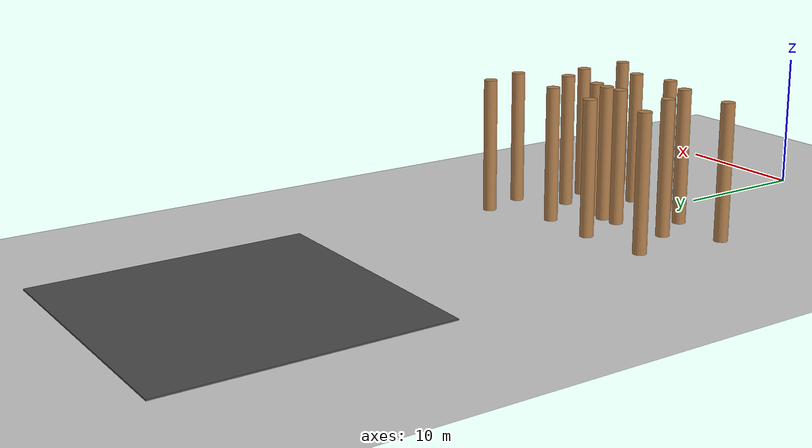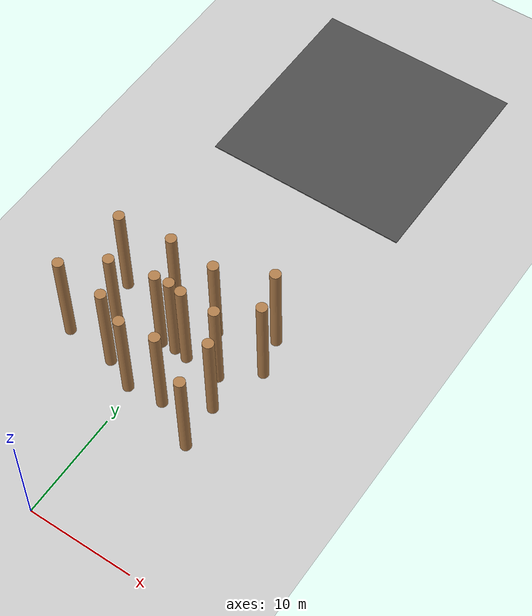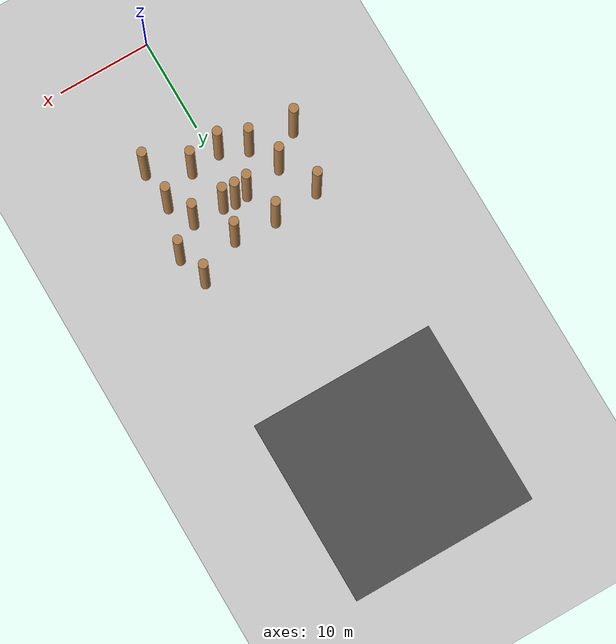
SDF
<sdf version="1.6">
 <world name="default">
  <model name="ground_plane">
   <static>1</static>
   <link name="link">
    <collision name="collision">
     <geometry><plane><normal>0 0 1</normal><size>100 100</size></plane></geometry>
     <surface><friction><ode><mu>100</mu><mu2>50</mu2></ode></friction></surface>
    </collision>
    <visual name="visual">
     <cast_shadows>0</cast_shadows>
     <geometry><plane><normal>0 0 1</normal><size>100 100</size></plane></geometry>
     <material>
      <script><uri>file://media/materials/scripts/gazebo.material</uri><name>Gazebo/Grey</name></script>
     </material>
    </visual>
   </link>
  </model>
  <model name="train_1">
   <link name="link_0_clone_0_clone_11_clone_3">
    <pose>9.37408 6.83632 0.043478 0 -0 3e-06</pose>
    <inertial>
     <mass>1000</mass>
     <inertia><ixx>0.145833</ixx><ixy>0</ixy><ixz>0</ixz><iyy>0.145833</iyy><iyz>0</iyz><izz>0.125</izz></inertia>
    </inertial>
    <visual name="visual">
     <pose>0 0 4.5 0 -0 0</pose>
     <geometry><cylinder><radius>0.5</radius><length>10</length></cylinder></geometry>
     <material>
      <lighting>1</lighting>
      <script><uri>file://media/materials/scripts/gazebo.material</uri><name>Gazebo/WoodFloor</name></script>
      <ambient>0.3 0.3 0.3 1</ambient>
      <diffuse>0.7 0.7 0.7 1</diffuse>
      <specular>0.01 0.01 0.01 1</specular>
      <emissive>0 0 0 1</emissive>
      <shader type="vertex"><normal_map>__default__</normal_map></shader>
     </material>
    </visual>
    <collision name="collision">
     <pose>0 0 4.5 0 -0 0</pose>
     <geometry><cylinder><radius>0.5</radius><length>10</length></cylinder></geometry>
     <surface>
      <friction>
       <ode><mu>1</mu><mu2>1</mu2><fdir1>0 0 0</fdir1><slip1>0</slip1><slip2>0</slip2></ode>
       <torsional>
        <coefficient>1</coefficient>
        <patch_radius>0</patch_radius>
        <surface_radius>0</surface_radius>
        <use_patch_radius>1</use_patch_radius>
        <ode><slip>0</slip></ode>
       </torsional>
      </friction>
      <bounce><restitution_coefficient>0</restitution_coefficient><threshold>1e+06</threshold></bounce>
      <contact>
       <collide_without_contact>0</collide_without_contact>
       <collide_without_contact_bitmask>1</collide_without_contact_bitmask>
       <collide_bitmask>1</collide_bitmask>
       <ode>
        <soft_cfm>0</soft_cfm>
        <soft_erp>0.2</soft_erp>
        <kp>1e+13</kp>
        <kd>1</kd>
        <max_vel>0.01</max_vel>
        <min_depth>0</min_depth>
       </ode>
       <bullet>
        <split_impulse>1</split_impulse>
        <split_impulse_penetration_threshold>-0.01</split_impulse_penetration_threshold>
        <soft_cfm>0</soft_cfm>
        <soft_erp>0.2</soft_erp>
        <kp>1e+13</kp>
        <kd>1</kd>
       </bullet>
      </contact>
     </surface>
    </collision>
   </link>
   <link name="link_0_clone_0_clone_11_clone_8">
    <pose>-6.90192 1.15105 0.043478 0 -0 3e-06</pose>
    <inertial>
     <mass>1000</mass>
     <inertia><ixx>0.145833</ixx><ixy>0</ixy><ixz>0</ixz><iyy>0.145833</iyy><iyz>0</iyz><izz>0.125</izz></inertia>
    </inertial>
    <visual name="visual">
     <pose>0 0 4.5 0 -0 0</pose>
     <geometry><cylinder><radius>0.5</radius><length>10</length></cylinder></geometry>
     <material>
      <lighting>1</lighting>
      <script><uri>file://media/materials/scripts/gazebo.material</uri><name>Gazebo/WoodFloor</name></script>
      <ambient>0.3 0.3 0.3 1</ambient>
      <diffuse>0.7 0.7 0.7 1</diffuse>
      <specular>0.01 0.01 0.01 1</specular>
      <emissive>0 0 0 1</emissive>
      <shader type="vertex"><normal_map>__default__</normal_map></shader>
     </material>
    </visual>
    <collision name="collision">
     <pose>0 0 4.5 0 -0 0</pose>
     <geometry><cylinder><radius>0.5</radius><length>10</length></cylinder></geometry>
     <surface>
      <friction>
       <ode><mu>1</mu><mu2>1</mu2><fdir1>0 0 0</fdir1><slip1>0</slip1><slip2>0</slip2></ode>
       <torsional>
        <coefficient>1</coefficient>
        <patch_radius>0</patch_radius>
        <surface_radius>0</surface_radius>
        <use_patch_radius>1</use_patch_radius>
        <ode><slip>0</slip></ode>
       </torsional>
      </friction>
      <bounce><restitution_coefficient>0</restitution_coefficient><threshold>1e+06</threshold></bounce>
      <contact>
       <collide_without_contact>0</collide_without_contact>
       <collide_without_contact_bitmask>1</collide_without_contact_bitmask>
       <collide_bitmask>1</collide_bitmask>
       <ode>
        <soft_cfm>0</soft_cfm>
        <soft_erp>0.2</soft_erp>
        <kp>1e+13</kp>
        <kd>1</kd>
        <max_vel>0.01</max_vel>
        <min_depth>0</min_depth>
       </ode>
       <bullet>
        <split_impulse>1</split_impulse>
        <split_impulse_penetration_threshold>-0.01</split_impulse_penetration_threshold>
        <soft_cfm>0</soft_cfm>
        <soft_erp>0.2</soft_erp>
        <kp>1e+13</kp>
        <kd>1</kd>
       </bullet>
      </contact>
     </surface>
    </collision>
   </link>
   <link name="link_0_clone_0_clone_15">
    <pose>3.75773 7.96734 0.043478 0 -0 0</pose>
    <inertial>
     <mass>1000</mass>
     <inertia><ixx>0.145833</ixx><ixy>0</ixy><ixz>0</ixz><iyy>0.145833</iyy><iyz>0</iyz><izz>0.125</izz></inertia>
    </inertial>
    <visual name="visual">
     <pose>0 0 4.5 0 -0 0</pose>
     <geometry><cylinder><radius>0.5</radius><length>10</length></cylinder></geometry>
     <material>
      <lighting>1</lighting>
      <script><uri>file://media/materials/scripts/gazebo.material</uri><name>Gazebo/WoodFloor</name></script>
      <ambient>0.3 0.3 0.3 1</ambient>
      <diffuse>0.7 0.7 0.7 1</diffuse>
      <specular>0.01 0.01 0.01 1</specular>
      <emissive>0 0 0 1</emissive>
      <shader type="vertex"><normal_map>__default__</normal_map></shader>
     </material>
    </visual>
    <collision name="collision">
     <pose>0 0 4.5 0 -0 0</pose>
     <geometry><cylinder><radius>0.5</radius><length>10</length></cylinder></geometry>
     <surface>
      <friction>
       <ode><mu>1</mu><mu2>1</mu2><fdir1>0 0 0</fdir1><slip1>0</slip1><slip2>0</slip2></ode>
       <torsional>
        <coefficient>1</coefficient>
        <patch_radius>0</patch_radius>
        <surface_radius>0</surface_radius>
        <use_patch_radius>1</use_patch_radius>
        <ode><slip>0</slip></ode>
       </torsional>
      </friction>
      <bounce><restitution_coefficient>0</restitution_coefficient><threshold>1e+06</threshold></bounce>
      <contact>
       <collide_without_contact>0</collide_without_contact>
       <collide_without_contact_bitmask>1</collide_without_contact_bitmask>
       <collide_bitmask>1</collide_bitmask>
       <ode>
        <soft_cfm>0</soft_cfm>
        <soft_erp>0.2</soft_erp>
        <kp>1e+13</kp>
        <kd>1</kd>
        <max_vel>0.01</max_vel>
        <min_depth>0</min_depth>
       </ode>
       <bullet>
        <split_impulse>1</split_impulse>
        <split_impulse_penetration_threshold>-0.01</split_impulse_penetration_threshold>
        <soft_cfm>0</soft_cfm>
        <soft_erp>0.2</soft_erp>
        <kp>1e+13</kp>
        <kd>1</kd>
       </bullet>
      </contact>
     </surface>
    </collision>
   </link>
   <link name="link_0_clone_0_clone_5">
    <pose>0.389912 4.52116 0.043478 0 -0 0</pose>
    <inertial>
     <mass>1000</mass>
     <inertia><ixx>0.145833</ixx><ixy>0</ixy><ixz>0</ixz><iyy>0.145833</iyy><iyz>0</iyz><izz>0.125</izz></inertia>
    </inertial>
    <visual name="visual">
     <pose>0 0 4.5 0 -0 0</pose>
     <geometry><cylinder><radius>0.5</radius><length>10</length></cylinder></geometry>
     <material>
      <lighting>1</lighting>
      <script><uri>file://media/materials/scripts/gazebo.material</uri><name>Gazebo/WoodFloor</name></script>
      <ambient>0.3 0.3 0.3 1</ambient>
      <diffuse>0.7 0.7 0.7 1</diffuse>
      <specular>0.01 0.01 0.01 1</specular>
      <emissive>0 0 0 1</emissive>
      <shader type="vertex"><normal_map>__default__</normal_map></shader>
     </material>
    </visual>
    <collision name="collision">
     <pose>0 0 4.5 0 -0 0</pose>
     <geometry><cylinder><radius>0.5</radius><length>10</length></cylinder></geometry>
     <surface>
      <friction>
       <ode><mu>1</mu><mu2>1</mu2><fdir1>0 0 0</fdir1><slip1>0</slip1><slip2>0</slip2></ode>
       <torsional>
        <coefficient>1</coefficient>
        <patch_radius>0</patch_radius>
        <surface_radius>0</surface_radius>
        <use_patch_radius>1</use_patch_radius>
        <ode><slip>0</slip></ode>
       </torsional>
      </friction>
      <bounce><restitution_coefficient>0</restitution_coefficient><threshold>1e+06</threshold></bounce>
      <contact>
       <collide_without_contact>0</collide_without_contact>
       <collide_without_contact_bitmask>1</collide_without_contact_bitmask>
       <collide_bitmask>1</collide_bitmask>
       <ode>
        <soft_cfm>0</soft_cfm>
        <soft_erp>0.2</soft_erp>
        <kp>1e+13</kp>
        <kd>1</kd>
        <max_vel>0.01</max_vel>
        <min_depth>0</min_depth>
       </ode>
       <bullet>
        <split_impulse>1</split_impulse>
        <split_impulse_penetration_threshold>-0.01</split_impulse_penetration_threshold>
        <soft_cfm>0</soft_cfm>
        <soft_erp>0.2</soft_erp>
        <kp>1e+13</kp>
        <kd>1</kd>
       </bullet>
      </contact>
     </surface>
    </collision>
   </link>
   <link name="link_0_clone_0_clone_5_clone_10">
    <pose>7.82332 1.64839 0.043478 0 -0 3e-06</pose>
    <inertial>
     <mass>1000</mass>
     <inertia><ixx>0.145833</ixx><ixy>0</ixy><ixz>0</ixz><iyy>0.145833</iyy><iyz>0</iyz><izz>0.125</izz></inertia>
    </inertial>
    <visual name="visual">
     <pose>0 0 4.5 0 -0 0</pose>
     <geometry><cylinder><radius>0.5</radius><length>10</length></cylinder></geometry>
     <material>
      <lighting>1</lighting>
      <script><uri>file://media/materials/scripts/gazebo.material</uri><name>Gazebo/WoodFloor</name></script>
      <ambient>0.3 0.3 0.3 1</ambient>
      <diffuse>0.7 0.7 0.7 1</diffuse>
      <specular>0.01 0.01 0.01 1</specular>
      <emissive>0 0 0 1</emissive>
      <shader type="vertex"><normal_map>__default__</normal_map></shader>
     </material>
    </visual>
    <collision name="collision">
     <pose>0 0 4.5 0 -0 0</pose>
     <geometry><cylinder><radius>0.5</radius><length>10</length></cylinder></geometry>
     <surface>
      <friction>
       <ode><mu>1</mu><mu2>1</mu2><fdir1>0 0 0</fdir1><slip1>0</slip1><slip2>0</slip2></ode>
       <torsional>
        <coefficient>1</coefficient>
        <patch_radius>0</patch_radius>
        <surface_radius>0</surface_radius>
        <use_patch_radius>1</use_patch_radius>
        <ode><slip>0</slip></ode>
       </torsional>
      </friction>
      <bounce><restitution_coefficient>0</restitution_coefficient><threshold>1e+06</threshold></bounce>
      <contact>
       <collide_without_contact>0</collide_without_contact>
       <collide_without_contact_bitmask>1</collide_without_contact_bitmask>
       <collide_bitmask>1</collide_bitmask>
       <ode>
        <soft_cfm>0</soft_cfm>
        <soft_erp>0.2</soft_erp>
        <kp>1e+13</kp>
        <kd>1</kd>
        <max_vel>0.01</max_vel>
        <min_depth>0</min_depth>
       </ode>
       <bullet>
        <split_impulse>1</split_impulse>
        <split_impulse_penetration_threshold>-0.01</split_impulse_penetration_threshold>
        <soft_cfm>0</soft_cfm>
        <soft_erp>0.2</soft_erp>
        <kp>1e+13</kp>
        <kd>1</kd>
       </bullet>
      </contact>
     </surface>
    </collision>
   </link>
   <link name="link_0_clone_0_clone_5_clone_11">
    <pose>1.77367 4.61405 0.043478 0 -0 3e-06</pose>
    <inertial>
     <mass>1000</mass>
     <inertia><ixx>0.145833</ixx><ixy>0</ixy><ixz>0</ixz><iyy>0.145833</iyy><iyz>0</iyz><izz>0.125</izz></inertia>
    </inertial>
    <visual name="visual">
     <pose>0 0 4.5 0 -0 0</pose>
     <geometry><cylinder><radius>0.5</radius><length>10</length></cylinder></geometry>
     <material>
      <lighting>1</lighting>
      <script><uri>file://media/materials/scripts/gazebo.material</uri><name>Gazebo/WoodFloor</name></script>
      <ambient>0.3 0.3 0.3 1</ambient>
      <diffuse>0.7 0.7 0.7 1</diffuse>
      <specular>0.01 0.01 0.01 1</specular>
      <emissive>0 0 0 1</emissive>
      <shader type="vertex"><normal_map>__default__</normal_map></shader>
     </material>
    </visual>
    <collision name="collision">
     <pose>0 0 4.5 0 -0 0</pose>
     <geometry><cylinder><radius>0.5</radius><length>10</length></cylinder></geometry>
     <surface>
      <friction>
       <ode><mu>1</mu><mu2>1</mu2><fdir1>0 0 0</fdir1><slip1>0</slip1><slip2>0</slip2></ode>
       <torsional>
        <coefficient>1</coefficient>
        <patch_radius>0</patch_radius>
        <surface_radius>0</surface_radius>
        <use_patch_radius>1</use_patch_radius>
        <ode><slip>0</slip></ode>
       </torsional>
      </friction>
      <bounce><restitution_coefficient>0</restitution_coefficient><threshold>1e+06</threshold></bounce>
      <contact>
       <collide_without_contact>0</collide_without_contact>
       <collide_without_contact_bitmask>1</collide_without_contact_bitmask>
       <collide_bitmask>1</collide_bitmask>
       <ode>
        <soft_cfm>0</soft_cfm>
        <soft_erp>0.2</soft_erp>
        <kp>1e+13</kp>
        <kd>1</kd>
        <max_vel>0.01</max_vel>
        <min_depth>0</min_depth>
       </ode>
       <bullet>
        <split_impulse>1</split_impulse>
        <split_impulse_penetration_threshold>-0.01</split_impulse_penetration_threshold>
        <soft_cfm>0</soft_cfm>
        <soft_erp>0.2</soft_erp>
        <kp>1e+13</kp>
        <kd>1</kd>
       </bullet>
      </contact>
     </surface>
    </collision>
   </link>
   <link name="link_0_clone_0_clone_5_clone_12">
    <pose>3.06332 4.4517 0.043478 0 -0 3e-06</pose>
    <inertial>
     <mass>1000</mass>
     <inertia><ixx>0.145833</ixx><ixy>0</ixy><ixz>0</ixz><iyy>0.145833</iyy><iyz>0</iyz><izz>0.125</izz></inertia>
    </inertial>
    <visual name="visual">
     <pose>0 0 4.5 0 -0 0</pose>
     <geometry><cylinder><radius>0.5</radius><length>10</length></cylinder></geometry>
     <material>
      <lighting>1</lighting>
      <script><uri>file://media/materials/scripts/gazebo.material</uri><name>Gazebo/WoodFloor</name></script>
      <ambient>0.3 0.3 0.3 1</ambient>
      <diffuse>0.7 0.7 0.7 1</diffuse>
      <specular>0.01 0.01 0.01 1</specular>
      <emissive>0 0 0 1</emissive>
      <shader type="vertex"><normal_map>__default__</normal_map></shader>
     </material>
    </visual>
    <collision name="collision">
     <pose>0 0 4.5 0 -0 0</pose>
     <geometry><cylinder><radius>0.5</radius><length>10</length></cylinder></geometry>
     <surface>
      <friction>
       <ode><mu>1</mu><mu2>1</mu2><fdir1>0 0 0</fdir1><slip1>0</slip1><slip2>0</slip2></ode>
       <torsional>
        <coefficient>1</coefficient>
        <patch_radius>0</patch_radius>
        <surface_radius>0</surface_radius>
        <use_patch_radius>1</use_patch_radius>
        <ode><slip>0</slip></ode>
       </torsional>
      </friction>
      <bounce><restitution_coefficient>0</restitution_coefficient><threshold>1e+06</threshold></bounce>
      <contact>
       <collide_without_contact>0</collide_without_contact>
       <collide_without_contact_bitmask>1</collide_without_contact_bitmask>
       <collide_bitmask>1</collide_bitmask>
       <ode>
        <soft_cfm>0</soft_cfm>
        <soft_erp>0.2</soft_erp>
        <kp>1e+13</kp>
        <kd>1</kd>
        <max_vel>0.01</max_vel>
        <min_depth>0</min_depth>
       </ode>
       <bullet>
        <split_impulse>1</split_impulse>
        <split_impulse_penetration_threshold>-0.01</split_impulse_penetration_threshold>
        <soft_cfm>0</soft_cfm>
        <soft_erp>0.2</soft_erp>
        <kp>1e+13</kp>
        <kd>1</kd>
       </bullet>
      </contact>
     </surface>
    </collision>
   </link>
   <link name="link_0_clone_0_clone_5_clone_13">
    <pose>6.42045 4.37938 0.043478 0 -0 3e-06</pose>
    <inertial>
     <mass>1000</mass>
     <inertia><ixx>0.145833</ixx><ixy>0</ixy><ixz>0</ixz><iyy>0.145833</iyy><iyz>0</iyz><izz>0.125</izz></inertia>
    </inertial>
    <visual name="visual">
     <pose>0 0 4.5 0 -0 0</pose>
     <geometry><cylinder><radius>0.5</radius><length>10</length></cylinder></geometry>
     <material>
      <lighting>1</lighting>
      <script><uri>file://media/materials/scripts/gazebo.material</uri><name>Gazebo/WoodFloor</name></script>
      <ambient>0.3 0.3 0.3 1</ambient>
      <diffuse>0.7 0.7 0.7 1</diffuse>
      <specular>0.01 0.01 0.01 1</specular>
      <emissive>0 0 0 1</emissive>
      <shader type="vertex"><normal_map>__default__</normal_map></shader>
     </material>
    </visual>
    <collision name="collision">
     <pose>0 0 4.5 0 -0 0</pose>
     <geometry><cylinder><radius>0.5</radius><length>10</length></cylinder></geometry>
     <surface>
      <friction>
       <ode><mu>1</mu><mu2>1</mu2><fdir1>0 0 0</fdir1><slip1>0</slip1><slip2>0</slip2></ode>
       <torsional>
        <coefficient>1</coefficient>
        <patch_radius>0</patch_radius>
        <surface_radius>0</surface_radius>
        <use_patch_radius>1</use_patch_radius>
        <ode><slip>0</slip></ode>
       </torsional>
      </friction>
      <bounce><restitution_coefficient>0</restitution_coefficient><threshold>1e+06</threshold></bounce>
      <contact>
       <collide_without_contact>0</collide_without_contact>
       <collide_without_contact_bitmask>1</collide_without_contact_bitmask>
       <collide_bitmask>1</collide_bitmask>
       <ode>
        <soft_cfm>0</soft_cfm>
        <soft_erp>0.2</soft_erp>
        <kp>1e+13</kp>
        <kd>1</kd>
        <max_vel>0.01</max_vel>
        <min_depth>0</min_depth>
       </ode>
       <bullet>
        <split_impulse>1</split_impulse>
        <split_impulse_penetration_threshold>-0.01</split_impulse_penetration_threshold>
        <soft_cfm>0</soft_cfm>
        <soft_erp>0.2</soft_erp>
        <kp>1e+13</kp>
        <kd>1</kd>
       </bullet>
      </contact>
     </surface>
    </collision>
   </link>
   <link name="link_0_clone_0_clone_5_clone_14">
    <pose>8.4255 10.1442 0.043478 0 -0 3e-06</pose>
    <inertial>
     <mass>1000</mass>
     <inertia><ixx>0.145833</ixx><ixy>0</ixy><ixz>0</ixz><iyy>0.145833</iyy><iyz>0</iyz><izz>0.125</izz></inertia>
    </inertial>
    <visual name="visual">
     <pose>0 0 4.5 0 -0 0</pose>
     <geometry><cylinder><radius>0.5</radius><length>10</length></cylinder></geometry>
     <material>
      <lighting>1</lighting>
      <script><uri>file://media/materials/scripts/gazebo.material</uri><name>Gazebo/WoodFloor</name></script>
      <ambient>0.3 0.3 0.3 1</ambient>
      <diffuse>0.7 0.7 0.7 1</diffuse>
      <specular>0.01 0.01 0.01 1</specular>
      <emissive>0 0 0 1</emissive>
      <shader type="vertex"><normal_map>__default__</normal_map></shader>
     </material>
    </visual>
    <collision name="collision">
     <pose>0 0 4.5 0 -0 0</pose>
     <geometry><cylinder><radius>0.5</radius><length>10</length></cylinder></geometry>
     <surface>
      <friction>
       <ode><mu>1</mu><mu2>1</mu2><fdir1>0 0 0</fdir1><slip1>0</slip1><slip2>0</slip2></ode>
       <torsional>
        <coefficient>1</coefficient>
        <patch_radius>0</patch_radius>
        <surface_radius>0</surface_radius>
        <use_patch_radius>1</use_patch_radius>
        <ode><slip>0</slip></ode>
       </torsional>
      </friction>
      <bounce><restitution_coefficient>0</restitution_coefficient><threshold>1e+06</threshold></bounce>
      <contact>
       <collide_without_contact>0</collide_without_contact>
       <collide_without_contact_bitmask>1</collide_without_contact_bitmask>
       <collide_bitmask>1</collide_bitmask>
       <ode>
        <soft_cfm>0</soft_cfm>
        <soft_erp>0.2</soft_erp>
        <kp>1e+13</kp>
        <kd>1</kd>
        <max_vel>0.01</max_vel>
        <min_depth>0</min_depth>
       </ode>
       <bullet>
        <split_impulse>1</split_impulse>
        <split_impulse_penetration_threshold>-0.01</split_impulse_penetration_threshold>
        <soft_cfm>0</soft_cfm>
        <soft_erp>0.2</soft_erp>
        <kp>1e+13</kp>
        <kd>1</kd>
       </bullet>
      </contact>
     </surface>
    </collision>
   </link>
   <link name="link_0_clone_0_clone_5_clone_21">
    <pose>0.690093 -0.614865 0.043478 0 -0 3e-06</pose>
    <inertial>
     <mass>1000</mass>
     <inertia><ixx>0.145833</ixx><ixy>0</ixy><ixz>0</ixz><iyy>0.145833</iyy><iyz>0</iyz><izz>0.125</izz></inertia>
    </inertial>
    <visual name="visual">
     <pose>0 0 4.5 0 -0 0</pose>
     <geometry><cylinder><radius>0.5</radius><length>10</length></cylinder></geometry>
     <material>
      <lighting>1</lighting>
      <script><uri>file://media/materials/scripts/gazebo.material</uri><name>Gazebo/WoodFloor</name></script>
      <ambient>0.3 0.3 0.3 1</ambient>
      <diffuse>0.7 0.7 0.7 1</diffuse>
      <specular>0.01 0.01 0.01 1</specular>
      <emissive>0 0 0 1</emissive>
      <shader type="vertex"><normal_map>__default__</normal_map></shader>
     </material>
    </visual>
    <collision name="collision">
     <pose>0 0 4.5 0 -0 0</pose>
     <geometry><cylinder><radius>0.5</radius><length>10</length></cylinder></geometry>
     <surface>
      <friction>
       <ode><mu>1</mu><mu2>1</mu2><fdir1>0 0 0</fdir1><slip1>0</slip1><slip2>0</slip2></ode>
       <torsional>
        <coefficient>1</coefficient>
        <patch_radius>0</patch_radius>
        <surface_radius>0</surface_radius>
        <use_patch_radius>1</use_patch_radius>
        <ode><slip>0</slip></ode>
       </torsional>
      </friction>
      <bounce><restitution_coefficient>0</restitution_coefficient><threshold>1e+06</threshold></bounce>
      <contact>
       <collide_without_contact>0</collide_without_contact>
       <collide_without_contact_bitmask>1</collide_without_contact_bitmask>
       <collide_bitmask>1</collide_bitmask>
       <ode>
        <soft_cfm>0</soft_cfm>
        <soft_erp>0.2</soft_erp>
        <kp>1e+13</kp>
        <kd>1</kd>
        <max_vel>0.01</max_vel>
        <min_depth>0</min_depth>
       </ode>
       <bullet>
        <split_impulse>1</split_impulse>
        <split_impulse_penetration_threshold>-0.01</split_impulse_penetration_threshold>
        <soft_cfm>0</soft_cfm>
        <soft_erp>0.2</soft_erp>
        <kp>1e+13</kp>
        <kd>1</kd>
       </bullet>
      </contact>
     </surface>
    </collision>
   </link>
   <link name="link_0_clone_0_clone_5_clone_22">
    <pose>8.06962 -2.47589 0.043478 0 -0 3e-06</pose>
    <inertial>
     <mass>1000</mass>
     <inertia><ixx>0.145833</ixx><ixy>0</ixy><ixz>0</ixz><iyy>0.145833</iyy><iyz>0</iyz><izz>0.125</izz></inertia>
    </inertial>
    <visual name="visual">
     <pose>0 0 4.5 0 -0 0</pose>
     <geometry><cylinder><radius>0.5</radius><length>10</length></cylinder></geometry>
     <material>
      <lighting>1</lighting>
      <script><uri>file://media/materials/scripts/gazebo.material</uri><name>Gazebo/WoodFloor</name></script>
      <ambient>0.3 0.3 0.3 1</ambient>
      <diffuse>0.7 0.7 0.7 1</diffuse>
      <specular>0.01 0.01 0.01 1</specular>
      <emissive>0 0 0 1</emissive>
      <shader type="vertex"><normal_map>__default__</normal_map></shader>
     </material>
    </visual>
    <collision name="collision">
     <pose>0 0 4.5 0 -0 0</pose>
     <geometry><cylinder><radius>0.5</radius><length>10</length></cylinder></geometry>
     <surface>
      <friction>
       <ode><mu>1</mu><mu2>1</mu2><fdir1>0 0 0</fdir1><slip1>0</slip1><slip2>0</slip2></ode>
       <torsional>
        <coefficient>1</coefficient>
        <patch_radius>0</patch_radius>
        <surface_radius>0</surface_radius>
        <use_patch_radius>1</use_patch_radius>
        <ode><slip>0</slip></ode>
       </torsional>
      </friction>
      <bounce><restitution_coefficient>0</restitution_coefficient><threshold>1e+06</threshold></bounce>
      <contact>
       <collide_without_contact>0</collide_without_contact>
       <collide_without_contact_bitmask>1</collide_without_contact_bitmask>
       <collide_bitmask>1</collide_bitmask>
       <ode>
        <soft_cfm>0</soft_cfm>
        <soft_erp>0.2</soft_erp>
        <kp>1e+13</kp>
        <kd>1</kd>
        <max_vel>0.01</max_vel>
        <min_depth>0</min_depth>
       </ode>
       <bullet>
        <split_impulse>1</split_impulse>
        <split_impulse_penetration_threshold>-0.01</split_impulse_penetration_threshold>
        <soft_cfm>0</soft_cfm>
        <soft_erp>0.2</soft_erp>
        <kp>1e+13</kp>
        <kd>1</kd>
       </bullet>
      </contact>
     </surface>
    </collision>
   </link>
   <link name="link_0_clone_0_clone_5_clone_5">
    <pose>3.97539 -0.256403 0.043478 0 -0 3e-06</pose>
    <inertial>
     <mass>1000</mass>
     <inertia><ixx>0.145833</ixx><ixy>0</ixy><ixz>0</ixz><iyy>0.145833</iyy><iyz>0</iyz><izz>0.125</izz></inertia>
    </inertial>
    <visual name="visual">
     <pose>0 0 4.5 0 -0 0</pose>
     <geometry><cylinder><radius>0.5</radius><length>10</length></cylinder></geometry>
     <material>
      <lighting>1</lighting>
      <script><uri>file://media/materials/scripts/gazebo.material</uri><name>Gazebo/WoodFloor</name></script>
      <ambient>0.3 0.3 0.3 1</ambient>
      <diffuse>0.7 0.7 0.7 1</diffuse>
      <specular>0.01 0.01 0.01 1</specular>
      <emissive>0 0 0 1</emissive>
      <shader type="vertex"><normal_map>__default__</normal_map></shader>
     </material>
    </visual>
    <collision name="collision">
     <pose>0 0 4.5 0 -0 0</pose>
     <geometry><cylinder><radius>0.5</radius><length>10</length></cylinder></geometry>
     <surface>
      <friction>
       <ode><mu>1</mu><mu2>1</mu2><fdir1>0 0 0</fdir1><slip1>0</slip1><slip2>0</slip2></ode>
       <torsional>
        <coefficient>1</coefficient>
        <patch_radius>0</patch_radius>
        <surface_radius>0</surface_radius>
        <use_patch_radius>1</use_patch_radius>
        <ode><slip>0</slip></ode>
       </torsional>
      </friction>
      <bounce><restitution_coefficient>0</restitution_coefficient><threshold>1e+06</threshold></bounce>
      <contact>
       <collide_without_contact>0</collide_without_contact>
       <collide_without_contact_bitmask>1</collide_without_contact_bitmask>
       <collide_bitmask>1</collide_bitmask>
       <ode>
        <soft_cfm>0</soft_cfm>
        <soft_erp>0.2</soft_erp>
        <kp>1e+13</kp>
        <kd>1</kd>
        <max_vel>0.01</max_vel>
        <min_depth>0</min_depth>
       </ode>
       <bullet>
        <split_impulse>1</split_impulse>
        <split_impulse_penetration_threshold>-0.01</split_impulse_penetration_threshold>
        <soft_cfm>0</soft_cfm>
        <soft_erp>0.2</soft_erp>
        <kp>1e+13</kp>
        <kd>1</kd>
       </bullet>
      </contact>
     </surface>
    </collision>
   </link>
   <link name="link_0_clone_0_clone_5_clone_6">
    <pose>-2.10439 0.622832 0.043478 0 -0 3e-06</pose>
    <inertial>
     <mass>1000</mass>
     <inertia><ixx>0.145833</ixx><ixy>0</ixy><ixz>0</ixz><iyy>0.145833</iyy><iyz>0</iyz><izz>0.125</izz></inertia>
    </inertial>
    <visual name="visual">
     <pose>0 0 4.5 0 -0 0</pose>
     <geometry><cylinder><radius>0.5</radius><length>10</length></cylinder></geometry>
     <material>
      <lighting>1</lighting>
      <script><uri>file://media/materials/scripts/gazebo.material</uri><name>Gazebo/WoodFloor</name></script>
      <ambient>0.3 0.3 0.3 1</ambient>
      <diffuse>0.7 0.7 0.7 1</diffuse>
      <specular>0.01 0.01 0.01 1</specular>
      <emissive>0 0 0 1</emissive>
      <shader type="vertex"><normal_map>__default__</normal_map></shader>
     </material>
    </visual>
    <collision name="collision">
     <pose>0 0 4.5 0 -0 0</pose>
     <geometry><cylinder><radius>0.5</radius><length>10</length></cylinder></geometry>
     <surface>
      <friction>
       <ode><mu>1</mu><mu2>1</mu2><fdir1>0 0 0</fdir1><slip1>0</slip1><slip2>0</slip2></ode>
       <torsional>
        <coefficient>1</coefficient>
        <patch_radius>0</patch_radius>
        <surface_radius>0</surface_radius>
        <use_patch_radius>1</use_patch_radius>
        <ode><slip>0</slip></ode>
       </torsional>
      </friction>
      <bounce><restitution_coefficient>0</restitution_coefficient><threshold>1e+06</threshold></bounce>
      <contact>
       <collide_without_contact>0</collide_without_contact>
       <collide_without_contact_bitmask>1</collide_without_contact_bitmask>
       <collide_bitmask>1</collide_bitmask>
       <ode>
        <soft_cfm>0</soft_cfm>
        <soft_erp>0.2</soft_erp>
        <kp>1e+13</kp>
        <kd>1</kd>
        <max_vel>0.01</max_vel>
        <min_depth>0</min_depth>
       </ode>
       <bullet>
        <split_impulse>1</split_impulse>
        <split_impulse_penetration_threshold>-0.01</split_impulse_penetration_threshold>
        <soft_cfm>0</soft_cfm>
        <soft_erp>0.2</soft_erp>
        <kp>1e+13</kp>
        <kd>1</kd>
       </bullet>
      </contact>
     </surface>
    </collision>
   </link>
   <link name="link_0_clone_0_clone_5_clone_7">
    <pose>-5.72608 7.75318 0.043478 0 -0 3e-06</pose>
    <inertial>
     <mass>1000</mass>
     <inertia><ixx>0.145833</ixx><ixy>0</ixy><ixz>0</ixz><iyy>0.145833</iyy><iyz>0</iyz><izz>0.125</izz></inertia>
    </inertial>
    <visual name="visual">
     <pose>0 0 4.5 0 -0 0</pose>
     <geometry><cylinder><radius>0.5</radius><length>10</length></cylinder></geometry>
     <material>
      <lighting>1</lighting>
      <script><uri>file://media/materials/scripts/gazebo.material</uri><name>Gazebo/WoodFloor</name></script>
      <ambient>0.3 0.3 0.3 1</ambient>
      <diffuse>0.7 0.7 0.7 1</diffuse>
      <specular>0.01 0.01 0.01 1</specular>
      <emissive>0 0 0 1</emissive>
      <shader type="vertex"><normal_map>__default__</normal_map></shader>
     </material>
    </visual>
    <collision name="collision">
     <pose>0 0 4.5 0 -0 0</pose>
     <geometry><cylinder><radius>0.5</radius><length>10</length></cylinder></geometry>
     <surface>
      <friction>
       <ode><mu>1</mu><mu2>1</mu2><fdir1>0 0 0</fdir1><slip1>0</slip1><slip2>0</slip2></ode>
       <torsional>
        <coefficient>1</coefficient>
        <patch_radius>0</patch_radius>
        <surface_radius>0</surface_radius>
        <use_patch_radius>1</use_patch_radius>
        <ode><slip>0</slip></ode>
       </torsional>
      </friction>
      <bounce><restitution_coefficient>0</restitution_coefficient><threshold>1e+06</threshold></bounce>
      <contact>
       <collide_without_contact>0</collide_without_contact>
       <collide_without_contact_bitmask>1</collide_without_contact_bitmask>
       <collide_bitmask>1</collide_bitmask>
       <ode>
        <soft_cfm>0</soft_cfm>
        <soft_erp>0.2</soft_erp>
        <kp>1e+13</kp>
        <kd>1</kd>
        <max_vel>0.01</max_vel>
        <min_depth>0</min_depth>
       </ode>
       <bullet>
        <split_impulse>1</split_impulse>
        <split_impulse_penetration_threshold>-0.01</split_impulse_penetration_threshold>
        <soft_cfm>0</soft_cfm>
        <soft_erp>0.2</soft_erp>
        <kp>1e+13</kp>
        <kd>1</kd>
       </bullet>
      </contact>
     </surface>
    </collision>
   </link>
   <link name="link_0_clone_0_clone_5_clone_8">
    <pose>-3.72607 3.75319 0.043478 0 -0 3e-06</pose>
    <inertial>
     <mass>1000</mass>
     <inertia><ixx>0.145833</ixx><ixy>0</ixy><ixz>0</ixz><iyy>0.145833</iyy><iyz>0</iyz><izz>0.125</izz></inertia>
    </inertial>
    <visual name="visual">
     <pose>0 0 4.5 0 -0 0</pose>
     <geometry><cylinder><radius>0.5</radius><length>10</length></cylinder></geometry>
     <material>
      <lighting>1</lighting>
      <script><uri>file://media/materials/scripts/gazebo.material</uri><name>Gazebo/WoodFloor</name></script>
      <ambient>0.3 0.3 0.3 1</ambient>
      <diffuse>0.7 0.7 0.7 1</diffuse>
      <specular>0.01 0.01 0.01 1</specular>
      <emissive>0 0 0 1</emissive>
      <shader type="vertex"><normal_map>__default__</normal_map></shader>
     </material>
    </visual>
    <collision name="collision">
     <pose>0 0 4.5 0 -0 0</pose>
     <geometry><cylinder><radius>0.5</radius><length>10</length></cylinder></geometry>
     <surface>
      <friction>
       <ode><mu>1</mu><mu2>1</mu2><fdir1>0 0 0</fdir1><slip1>0</slip1><slip2>0</slip2></ode>
       <torsional>
        <coefficient>1</coefficient>
        <patch_radius>0</patch_radius>
        <surface_radius>0</surface_radius>
        <use_patch_radius>1</use_patch_radius>
        <ode><slip>0</slip></ode>
       </torsional>
      </friction>
      <bounce><restitution_coefficient>0</restitution_coefficient><threshold>1e+06</threshold></bounce>
      <contact>
       <collide_without_contact>0</collide_without_contact>
       <collide_without_contact_bitmask>1</collide_without_contact_bitmask>
       <collide_bitmask>1</collide_bitmask>
       <ode>
        <soft_cfm>0</soft_cfm>
        <soft_erp>0.2</soft_erp>
        <kp>1e+13</kp>
        <kd>1</kd>
        <max_vel>0.01</max_vel>
        <min_depth>0</min_depth>
       </ode>
       <bullet>
        <split_impulse>1</split_impulse>
        <split_impulse_penetration_threshold>-0.01</split_impulse_penetration_threshold>
        <soft_cfm>0</soft_cfm>
        <soft_erp>0.2</soft_erp>
        <kp>1e+13</kp>
        <kd>1</kd>
       </bullet>
      </contact>
     </surface>
    </collision>
   </link>
   <link name="link_0_clone_0_clone_5_clone_9">
    <pose>-0.726085 8.29067 0.043478 0 -0 3e-06</pose>
    <inertial>
     <mass>1000</mass>
     <inertia><ixx>0.145833</ixx><ixy>0</ixy><ixz>0</ixz><iyy>0.145833</iyy><iyz>0</iyz><izz>0.125</izz></inertia>
    </inertial>
    <visual name="visual">
     <pose>0 0 4.5 0 -0 0</pose>
     <geometry><cylinder><radius>0.5</radius><length>10</length></cylinder></geometry>
     <material>
      <lighting>1</lighting>
      <script><uri>file://media/materials/scripts/gazebo.material</uri><name>Gazebo/WoodFloor</name></script>
      <ambient>0.3 0.3 0.3 1</ambient>
      <diffuse>0.7 0.7 0.7 1</diffuse>
      <specular>0.01 0.01 0.01 1</specular>
      <emissive>0 0 0 1</emissive>
      <shader type="vertex"><normal_map>__default__</normal_map></shader>
     </material>
    </visual>
    <collision name="collision">
     <pose>0 0 4.5 0 -0 0</pose>
     <geometry><cylinder><radius>0.5</radius><length>10</length></cylinder></geometry>
     <surface>
      <friction>
       <ode><mu>1</mu><mu2>1</mu2><fdir1>0 0 0</fdir1><slip1>0</slip1><slip2>0</slip2></ode>
       <torsional>
        <coefficient>1</coefficient>
        <patch_radius>0</patch_radius>
        <surface_radius>0</surface_radius>
        <use_patch_radius>1</use_patch_radius>
        <ode><slip>0</slip></ode>
       </torsional>
      </friction>
      <bounce><restitution_coefficient>0</restitution_coefficient><threshold>1e+06</threshold></bounce>
      <contact>
       <collide_without_contact>0</collide_without_contact>
       <collide_without_contact_bitmask>1</collide_without_contact_bitmask>
       <collide_bitmask>1</collide_bitmask>
       <ode>
        <soft_cfm>0</soft_cfm>
        <soft_erp>0.2</soft_erp>
        <kp>1e+13</kp>
        <kd>1</kd>
        <max_vel>0.01</max_vel>
        <min_depth>0</min_depth>
       </ode>
       <bullet>
        <split_impulse>1</split_impulse>
        <split_impulse_penetration_threshold>-0.01</split_impulse_penetration_threshold>
        <soft_cfm>0</soft_cfm>
        <soft_erp>0.2</soft_erp>
        <kp>1e+13</kp>
        <kd>1</kd>
       </bullet>
      </contact>
     </surface>
    </collision>
   </link>
   <static>1</static>
   <pose>-1.27394 14.2468 0.506522 0 0 -3e-06</pose>
  </model>
  <model name="asphalt_plane">
   <link name="link">
    <inertial>
     <mass>1</mass>
     <inertia><ixx>1</ixx><ixy>0</ixy><ixz>0</ixz><iyy>1</iyy><iyz>0</iyz><izz>1</izz></inertia>
    </inertial>
    <visual name="visual">
     <cast_shadows>0</cast_shadows>
     <geometry><box><size>20 20 0.1</size></box></geometry>
     <material>
      <script>
       <uri>model://asphalt_plane/materials/scripts</uri>
       <uri>model://asphalt_plane/materials/textures</uri>
       <name>vrc/asphalt</name>
      </script>
      <ambient>0.5 0.5 0.5 1</ambient>
      <diffuse>0.5 0.5 0.5 1</diffuse>
      <specular>0.2 0.2 0.2 1</specular>
      <emissive>0 0 0 1</emissive>
      <shader type="vertex"><normal_map>__default__</normal_map></shader>
     </material>
    </visual>
    <collision name="collision">
     <geometry><box><size>20 20 0.1</size></box></geometry>
     <surface>
      <friction>
       <ode><mu>1</mu><mu2>1</mu2><fdir1>0 0 0</fdir1><slip1>0</slip1><slip2>0</slip2></ode>
       <torsional>
        <coefficient>1</coefficient>
        <patch_radius>0</patch_radius>
        <surface_radius>0</surface_radius>
        <use_patch_radius>1</use_patch_radius>
        <ode><slip>0</slip></ode>
       </torsional>
      </friction>
      <bounce><restitution_coefficient>0</restitution_coefficient><threshold>1e+06</threshold></bounce>
      <contact>
       <collide_without_contact>0</collide_without_contact>
       <collide_without_contact_bitmask>1</collide_without_contact_bitmask>
       <collide_bitmask>1</collide_bitmask>
       <ode>
        <soft_cfm>0</soft_cfm>
        <soft_erp>0.2</soft_erp>
        <kp>1e+13</kp>
        <kd>1</kd>
        <max_vel>0.01</max_vel>
        <min_depth>0</min_depth>
       </ode>
       <bullet>
        <split_impulse>1</split_impulse>
        <split_impulse_penetration_threshold>-0.01</split_impulse_penetration_threshold>
        <soft_cfm>0</soft_cfm>
        <soft_erp>0.2</soft_erp>
        <kp>1e+13</kp>
        <kd>1</kd>
       </bullet>
      </contact>
     </surface>
    </collision>
   </link>
   <static>1</static>
   <pose>0.117005 49.1376 0 0 -0 0</pose>
  </model>
 </world>
</sdf>
